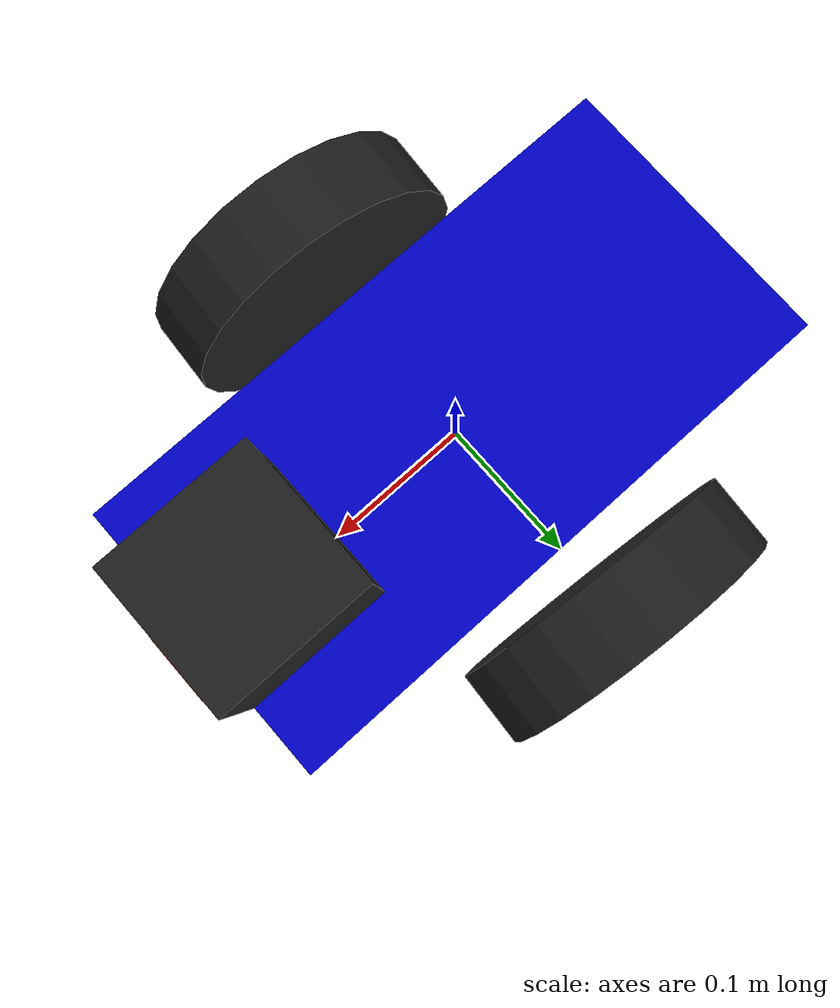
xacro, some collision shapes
<?xml version='1.0'?>

<robot name="my_robot" xmlns:xacro="http://www.ros.org/wiki/xacro">
<xacro:include filename="$(find my_robot)/urdf/my_robot.gazebo" />

	<material name="blue">
        <color rgba="0 0 0.8 1"/>
        </material>
  <link name="robot_footprint"></link>

  <joint name="robot_footprint_joint" type="fixed">
    <origin xyz="0 0 0" rpy="0 0 0" />
    <parent link="robot_footprint"/>
    <child link="chassis" />
  </joint>

  <link name='chassis'>
    <pose>0 0 0.1 0 0 0</pose>

    <inertial>
      <mass value="15.0"/>
      <origin xyz="0.0 0 0" rpy=" 0 0 0"/>
      <inertia
          ixx="0.1" ixy="0" ixz="0"
          iyy="0.1" iyz="0"
          izz="0.1"
      />
    </inertial>

    <collision name='collision'>
      <origin xyz="0 0 0" rpy=" 0 0 0"/>
      <geometry>
        <box size=".4 .2 .1"/>
      </geometry>
    </collision>

    <visual name='chassis_visual'>
      <origin xyz="0 0 0" rpy=" 0 0 0"/>
      <geometry>
	      <box size=".4 .2 .1"/>
      </geometry>
      <material name="blue"/>

    </visual>

    <collision name='back_caster_collision'>
      <origin xyz="-0.15 0 -0.05" rpy=" 0 0 0"/>
      <geometry>
        <sphere radius="0.0499"/>
      </geometry>
    </collision>

    <visual name='back_caster_visual'>
      <origin xyz="-0.15 0 -0.05" rpy=" 0 0 0"/>
      <geometry>
        <sphere radius="0.05"/>
      </geometry>
    </visual>

    <collision name='front_caster_collision'>
      <origin xyz="0.15 0 -0.05" rpy=" 0 0 0"/>
      <geometry>
        <sphere radius="0.0499"/>
      </geometry>
    </collision>

    <visual name='front_caster_visual'>
      <origin xyz="0.15 0 -0.05" rpy=" 0 0 0"/>
      <geometry>
        <sphere radius="0.05"/>
      </geometry>
    </visual>

  </link>

  <link name = 'left_wheel'>

    <collision name = 'left_wheel_collision'>
	    <origin xyz="0 0 0" rpy ="0 1.5707 1.507"/>
         <geometry>
		 <cylinder radius = "0.1" length = "0.05"/>
	</geometry>
   </collision>

   <inertial>
	   <mass value = "5.0"/>
	   <origin xyz="0 0 0" rpy ="0 1.5707 1.507"/>
	   <inertia
          ixx="0.1" ixy="0" ixz="0"
          iyy="0.1" iyz="0"
          izz="0.1"
		   />
   </inertial>

   <visual name = 'left_wheel_visual'>
	   <origin xyz="0 0 0" rpy ="0 1.5707 1.507"/>
           <geometry>
                 <cylinder radius = "0.1" length = "0.05"/>
            </geometry>
    </visual>
</link>

   <joint type="continuous" name="left_wheel_hinge">
      <origin xyz="0 0.15 0" rpy="0 0 0"/>
      <child link="left_wheel"/>
      <parent link="chassis"/>
      <axis xyz="0 1 0" rpy="0 0 0"/>
      <limit effort="10000" velocity="1000"/>
      <dynamics damping="1.0" friction="1.0"/>
    </joint>

<link name = 'right_wheel'>

    <collision name = 'right_wheel_collision'>
            <origin xyz="0 0 0" rpy ="0 1.5707 1.507"/>
         <geometry>
                 <cylinder radius = "0.1" length = "0.05"/>
        </geometry>
   </collision>

   <inertial>
           <mass value = "5.0"/>
           <origin xyz="0 0 0" rpy ="0 1.5707 1.507"/>
           <inertia
          ixx="0.1" ixy="0" ixz="0"
          iyy="0.1" iyz="0"
          izz="0.1"
                   />
   </inertial>

   <visual name = 'right_wheel_visual'>
           <origin xyz="0 0 0" rpy ="0 1.5707 1.507"/>
           <geometry>
                 <cylinder radius = "0.1" length = "0.05"/>
            </geometry>
    </visual>

</link>
   <joint type="continuous" name="right_wheel_hinge">
      <origin xyz="0 -0.15 0" rpy="0 0 0"/>
      <child link="right_wheel"/>
      <parent link="chassis"/>
      <axis xyz="0 1 0" rpy="0 0 0"/>
      <limit effort="10000" velocity="1000"/>
      <dynamics damping="1.0" friction="1.0"/>
    </joint>

    <link name = 'camera'>

       <inertial>
	 <mass value="0.1"/>
	 <origin xyz="0 0 0" rpy="0 0 0"/>
	 <inertia

             ixx="1e-6" ixy="0" ixz="0"
             iyy="1e-6" iyz="0"
             izz="1e-6"
          />
        </inertial>

    <collision name = 'camera_collision'>
       <origin xyz="0 0 0" rpy="0 0 0"/>
       <geometry>
	       <box size="0.05 0.05 0.05"/>
       </geometry>
    </collision>

    <visual name='camera_visual'>
	    <origin xyz="0 0 0" rpy="0 0 0"/>
            <geometry>
		    <box size="0.05 0.05 0.05"/>
	    </geometry>

   </visual>

    </link>

    <joint type="fixed" name="camera_joint">
      <origin xyz="0.2 0 0" rpy="0 0 0"/>
      <child link="camera"/>
      <parent link="chassis"/>
      <axis xyz="0 1 0" rpy="0 0 0"/>
    </joint>

      <link name = 'hokuyo'>

       <inertial>
         <mass value="1e-5"/>
         <origin xyz="0 0 0" rpy="0 0 0"/>
         <inertia

             ixx="1e-6" ixy="0" ixz="0"
             iyy="1e-6" iyz="0"
             izz="1e-6"
          />
        </inertial>

    <collision name = 'hokuyo_collision'>
       <origin xyz="0 0 0" rpy="0 0 0"/>
       <geometry>
               <box size="0.1 0.1 0.1"/>
       </geometry>
    </collision>

    <visual name='hokuyo_visual'>
            <origin xyz="0 0 0" rpy="0 0 0"/>
	    <geometry>

	       <mesh filename="package://my_robot/meshes/hokuyo.dae"/>

	    </geometry>

    </visual>

    </link>

    <joint type="fixed" name="hokuyo_joint">
      <origin xyz="0.15 0 0.1" rpy="0 0 0"/>
      <child link="hokuyo"/>
      <parent link="chassis"/>
      <axis xyz="0 1 0" rpy="0 0 0"/>
    </joint>

<gazebo reference="left_wheel">
    <material>Gazebo/Black</material>
</gazebo>

<gazebo reference="right_wheel">
    <material>Gazebo/Black</material>
</gazebo>

<gazebo reference="camera">
    <material>Gazebo/Red</material>
</gazebo>

<gazebo reference="hokuyo">
    <material>Gazebo/Black</material>
</gazebo>

<gazebo reference="chassis">
    <material>Gazebo/Blue</material>
</gazebo>

</robot>
